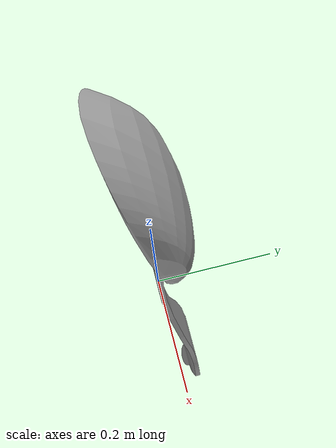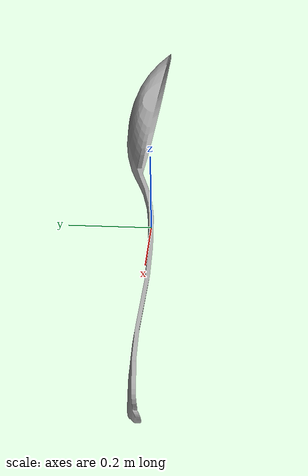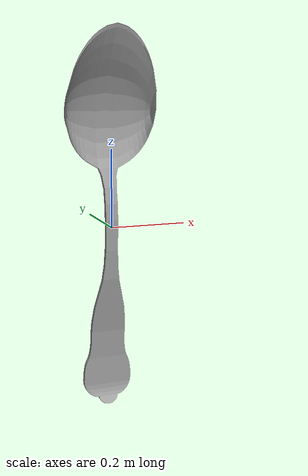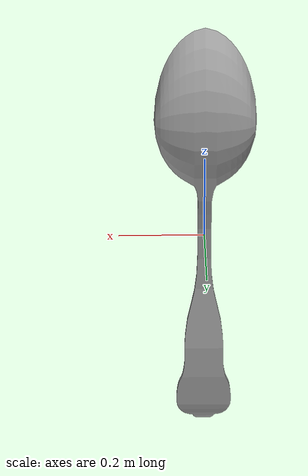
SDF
<?xml version="1.0" ?>
<sdf version="1.5">
  <model name='cutlery3'>
    <pose>0 0 0 0 0 0</pose>
    <static>1</static>
    <link name='body'>
      <collision name="cutlery3-coll">
        <pose>0 0 -0.5 0 0 0</pose>
        <geometry>
          <mesh>
            <uri>model://cutlery3/meshes/cutlery3.dae</uri>
          </mesh>
        </geometry>
      </collision>
      <visual name='cutlery3'>
        <cast_shadows>1</cast_shadows>
        <pose>0 0 -0.5 0 0 0</pose>
        <geometry>
          <mesh>
            <uri>model://cutlery3/meshes/cutlery3.dae</uri>
          </mesh>
        </geometry>
      </visual>
      <velocity_decay>
        <linear>0</linear>
        <angular>0</angular>
      </velocity_decay>
      <self_collide>0</self_collide>
      <kinematic>0</kinematic>
      <gravity>1</gravity>
    </link>
  </model>

</sdf>
